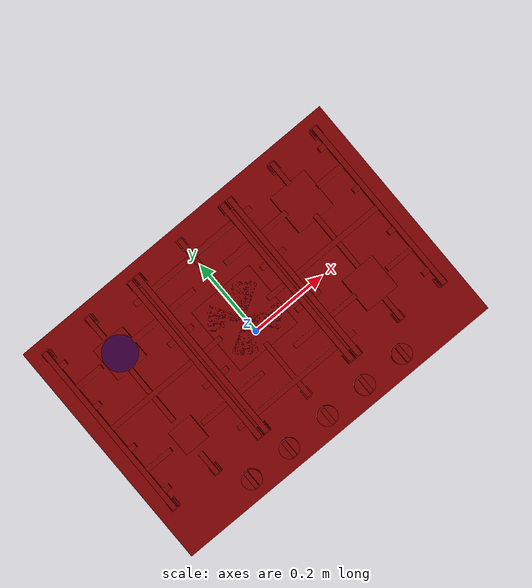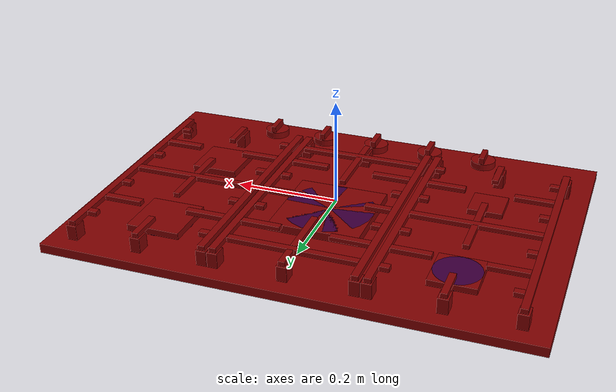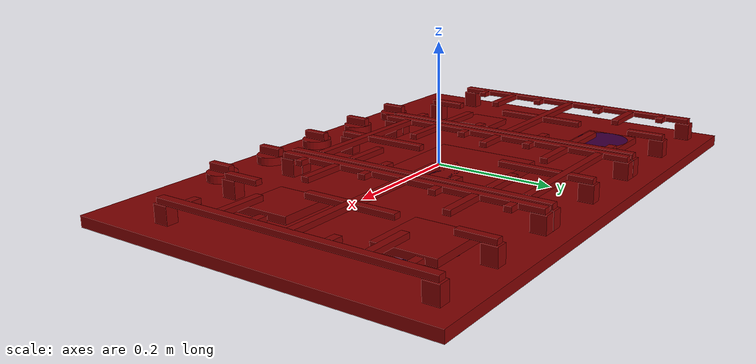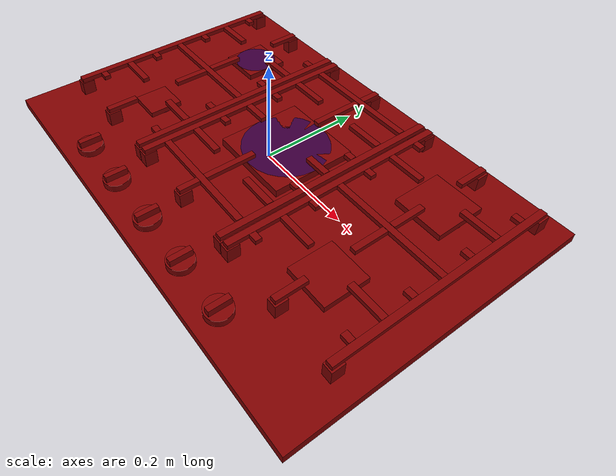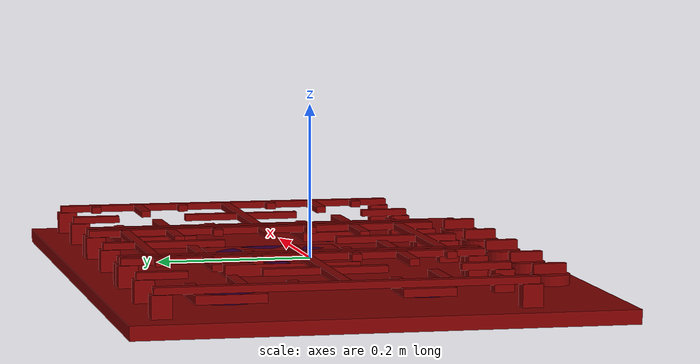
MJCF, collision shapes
<mujoco model="model">
  <compiler angle="radian"/>
  <asset>
    <mesh file="visuals/knob_center.obj" name="knob_center_vis"/>
    <mesh file="visuals/knob_front_left.obj" name="knob_front_left_vis"/>
    <mesh file="visuals/knob_front_right.obj" name="knob_front_right_vis"/>
    <mesh file="visuals/knob_rear_left.obj" name="knob_rear_left_vis"/>
    <mesh file="visuals/knob_rear_right.obj" name="knob_rear_right_vis"/>
    <mesh file="visuals/Body001.obj" name="Body001_vis"/>
    <texture file="visuals/T_BC001.png" name="Body001_material" type="2d"/>
    <material name="Body001_material" rgba="1 1 1 1.0" texture="Body001_material" shininess="0.47988295555114746" specular="1"/>
    <texture file="visuals/T_BC001.png" name="knob_front_left_material" type="2d"/>
    <material name="knob_front_left_material" rgba="1 1 1 1.0" texture="knob_front_left_material" shininess="0.47988295555114746" specular="1"/>
    <texture file="visuals/T_BC001.png" name="knob_front_right_material" type="2d"/>
    <material name="knob_front_right_material" rgba="1 1 1 1.0" texture="knob_front_right_material" shininess="0.47988295555114746" specular="1"/>
    <texture file="visuals/T_BC001.png" name="knob_rear_left_material" type="2d"/>
    <material name="knob_rear_left_material" rgba="1 1 1 1.0" texture="knob_rear_left_material" shininess="0.47988295555114746" specular="1"/>
    <texture file="visuals/T_BC001.png" name="knob_center_material" type="2d"/>
    <material name="knob_center_material" rgba="1 1 1 1.0" texture="knob_center_material" shininess="0.47988295555114746" specular="1"/>
    <texture file="visuals/T_BC001.png" name="knob_rear_right_material" type="2d"/>
    <material name="knob_rear_right_material" rgba="1 1 1 1.0" texture="knob_rear_right_material" shininess="0.47988295555114746" specular="1"/>
  </asset>
  <default>
    <default class="visual">
      <geom conaffinity="0" contype="0" group="1" type="mesh"/>
    </default>
    <default class="collision">
      <geom group="0" rgba="0.5 0 0 0.5"/>
    </default>
    <default class="spawn">
      <geom group="0" rgba="1 1 1 0.5" contype="0" conaffinity="0"/>
      <site group="0" rgba="1 1 1 0.5"/>
    </default>
    <default class="region">
      <geom group="1" conaffinity="0" contype="0" rgba="0 1 0 0"/>
    </default>
  </default>
  <worldbody>
    <body>
      <body name="object">
        <site type="cylinder" rgba="0 0 0.5 0.5" size="0.08656966686248779 0.012769924476742744" pos="0.0 0.040103647857904434 -0.007111881393939257" name="burner_on_center"/>
        <site type="cylinder" rgba="0 0 0.5 0.5" size="0.05144132301211357 0.011255131103098392" pos="0.2748992443084717 0.1626046597957611 -0.008661002852022648" name="burner_on_rear_right"/>
        <site type="cylinder" rgba="0 0 0.5 0.5" size="0.04561370983719826 0.00783844105899334" pos="0.27426406741142273 -0.0852443128824234 -0.005294788163155317" name="burner_on_front_right"/>
        <site type="cylinder" rgba="0 0 0.5 0.5" size="0.03314429894089699 0.00969509594142437" pos="-0.27445462346076965 -0.08466880768537521 -0.009657219983637333" name="burner_on_front_left"/>
        <site type="cylinder" rgba="0 0 0.5 0.5" size="0.04386577755212784 0.01081631425768137" pos="-0.2743167579174042 0.1626046597957611 -0.008231893181800842" name="burner_on_rear_left"/>
        <geom mesh="Body001_vis" type="mesh" solimp="0.998 0.998 0.001" solref="0.001 1" density="100" friction="0.95 0.3 0.1" class="visual" material="Body001_material"/>
        <geom class="collision" type="box" pos="0.0 0.040103647857904434 -0.0019952296279370785" size="0.08656966686248779 0.0879051461815834 0.007653272710740566" quat="1.0 0.0 0.0 0.0"/>
        <geom class="collision" type="box" pos="-0.27445462346076965 -0.08466880768537521 -0.003927970305085182" size="0.03314429894089699 0.03365560248494148 0.0051910425536334515" quat="1.0 0.0 0.0 0.0"/>
        <geom class="collision" type="box" pos="0.27426406741142273 -0.0852443128824234 -0.003200037404894829" size="0.04561370983719826 0.04631737619638443 0.006193192675709724" quat="1.0 0.0 0.0 0.0"/>
        <geom class="collision" type="box" pos="-0.2743167579174042 0.1626046597957611 -0.00313394982367754" size="0.04386577755212784 0.04454248026013374 0.005680954083800316" quat="1.0 0.0 0.0 0.0"/>
        <geom class="collision" type="box" pos="0.2748992443084717 0.1626046597957611 -0.0025666002184152603" size="0.05144132301211357 0.05223488807678223 0.006143162492662668" quat="1.0 0.0 0.0 0.0"/>
        <geom class="collision" type="box" pos="-0.0004749286163132638 -0.00021361373364925385 -0.01901177130639553" size="0.45149317383766174 0.3072732090950012 0.008988043293356895" quat="1.0 0.0 0.0 0.0"/>
        <geom class="collision" type="box" pos="-0.40318939089775085 0.0390193909406662 0.0227240901440382" size="0.006734521593898535 0.2327040582895279 0.004370349925011396" quat="1.0 0.0 0.0 0.0"/>
        <geom class="collision" type="box" pos="-0.40363121032714844 -0.1840205043554306 0.00425000349059701" size="0.009656357578933239 0.012680822052061558 0.014190979301929474" quat="1.0 0.0 0.0 0.0"/>
        <geom class="collision" type="box" pos="-0.40363121032714844 0.2629361152648926 0.00425000349059701" size="0.009656357578933239 0.012680822052061558 0.014190979301929474" quat="1.0 0.0 0.0 0.0"/>
        <geom class="collision" type="box" pos="-0.38725337386131287 -0.14592097699642181 0.0227240901440382" size="0.008896112442016602 0.006432379595935345 0.004370349925011396" quat="1.0 0.0 0.0 0.0"/>
        <geom class="collision" type="box" pos="-0.35932040214538574 -0.0839422345161438 0.0227240901440382" size="0.03682908043265343 0.006432379595935345 0.004370349925011396" quat="1.0 0.0 0.0 0.0"/>
        <geom class="collision" type="box" pos="-0.27563101053237915 0.0394468791782856 0.0227240901440382" size="0.12051846086978912 0.006432379595935345 0.004370349925011396" quat="1.0 0.0 0.0 0.0"/>
        <geom class="collision" type="box" pos="-0.38725337386131287 -0.023332936689257622 0.0227240901440382" size="0.008896112442016602 0.006432379595935345 0.004370349925011396" quat="1.0 0.0 0.0 0.0"/>
        <geom class="collision" type="box" pos="-0.38725337386131287 0.22476637363433838 0.0227240901440382" size="0.008896112442016602 0.006432379595935345 0.004370349925011396" quat="1.0 0.0 0.0 0.0"/>
        <geom class="collision" type="box" pos="-0.35932040214538574 0.1637813299894333 0.0227240901440382" size="0.03682908043265343 0.006432379595935345 0.004370349925011396" quat="1.0 0.0 0.0 0.0"/>
        <geom class="collision" type="box" pos="-0.38725337386131287 0.10217834264039993 0.0227240901440382" size="0.008896112442016602 0.006432379595935345 0.004370349925011396" quat="1.0 0.0 0.0 0.0"/>
        <geom class="collision" type="box" pos="-0.2760373055934906 0.2629361152648926 0.00425000349059701" size="0.009656357578933239 0.012680822052061558 0.014190979301929474" quat="1.0 0.0 0.0 0.0"/>
        <geom class="collision" type="box" pos="-0.2760373055934906 -0.1840205043554306 0.00425000349059701" size="0.009656357578933239 0.012680822052061558 0.014190979301929474" quat="1.0 0.0 0.0 0.0"/>
        <geom class="collision" type="box" pos="-0.2761278450489044 -0.16219130158424377 0.0227240901440382" size="0.006160271819680929 0.031436044722795486 0.004370349925011396" quat="1.0 0.0 0.0 0.0"/>
        <geom class="collision" type="box" pos="-0.2761278450489044 0.2406606674194336 0.0227240901440382" size="0.006160271819680929 0.031436044722795486 0.004370349925011396" quat="1.0 0.0 0.0 0.0"/>
        <geom class="collision" type="box" pos="-0.2761278450489044 0.08178220689296722 0.0227240901440382" size="0.006160271819680929 0.035429757088422775 0.004370349925011396" quat="1.0 0.0 0.0 0.0"/>
        <geom class="collision" type="box" pos="-0.2761278450489044 -0.002649029716849327 0.0227240901440382" size="0.006160271819680929 0.035429757088422775 0.004370349925011396" quat="1.0 0.0 0.0 0.0"/>
        <geom class="collision" type="box" pos="-0.16512537002563477 0.10217834264039993 0.0227240901440382" size="0.008896112442016602 0.006432379595935345 0.004370349925011396" quat="1.0 0.0 0.0 0.0"/>
        <geom class="collision" type="box" pos="-0.1930583417415619 0.1637813299894333 0.0227240901440382" size="0.03682908043265343 0.006432379595935345 0.004370349925011396" quat="1.0 0.0 0.0 0.0"/>
        <geom class="collision" type="box" pos="-0.16512537002563477 0.22476637363433838 0.0227240901440382" size="0.008896112442016602 0.006432379595935345 0.004370349925011396" quat="1.0 0.0 0.0 0.0"/>
        <geom class="collision" type="box" pos="-0.16512537002563477 -0.02333293855190277 0.0227240901440382" size="0.008896112442016602 0.006432379595935345 0.004370349925011396" quat="1.0 0.0 0.0 0.0"/>
        <geom class="collision" type="box" pos="-0.1930583417415619 -0.0839422345161438 0.0227240901440382" size="0.03682908043265343 0.006432379595935345 0.004370349925011396" quat="1.0 0.0 0.0 0.0"/>
        <geom class="collision" type="box" pos="-0.16512537002563477 -0.145920991897583 0.0227240901440382" size="0.008896112442016602 0.006432379595935345 0.004370349925011396" quat="1.0 0.0 0.0 0.0"/>
        <geom class="collision" type="box" pos="-0.1487475335597992 0.2629361152648926 0.004250003024935722" size="0.009656357578933239 0.012680822052061558 0.014190979301929474" quat="1.0 0.0 0.0 0.0"/>
        <geom class="collision" type="box" pos="-0.1487475335597992 -0.1840205192565918 0.004250003024935722" size="0.009656357578933239 0.012680822052061558 0.014190979301929474" quat="1.0 0.0 0.0 0.0"/>
        <geom class="collision" type="box" pos="-0.14918936789035797 0.0390193909406662 0.0227240901440382" size="0.006734521593898535 0.2327040582895279 0.004370349925011396" quat="1.0 0.0 0.0 0.0"/>
        <geom class="collision" type="box" pos="0.40203577280044556 0.0390193909406662 0.0227240901440382" size="0.006734521593898535 0.2327040582895279 0.004370349925011396" quat="1.0 0.0 0.0 0.0"/>
        <geom class="collision" type="box" pos="0.40247756242752075 -0.1840205192565918 0.004250003024935722" size="0.009656357578933239 0.012680822052061558 0.014190979301929474" quat="1.0 0.0 0.0 0.0"/>
        <geom class="collision" type="box" pos="0.40247756242752075 0.2629361152648926 0.004250003024935722" size="0.009656357578933239 0.012680822052061558 0.014190979301929474" quat="1.0 0.0 0.0 0.0"/>
        <geom class="collision" type="box" pos="0.38609975576400757 -0.145920991897583 0.0227240901440382" size="0.008896112442016602 0.006432379595935345 0.004370349925011396" quat="1.0 0.0 0.0 0.0"/>
        <geom class="collision" type="box" pos="0.35816675424575806 -0.0839422345161438 0.0227240901440382" size="0.03682908043265343 0.006432379595935345 0.004370349925011396" quat="1.0 0.0 0.0 0.0"/>
        <geom class="collision" type="box" pos="0.38609975576400757 -0.02333293855190277 0.0227240901440382" size="0.008896112442016602 0.006432379595935345 0.004370349925011396" quat="1.0 0.0 0.0 0.0"/>
        <geom class="collision" type="box" pos="0.38609975576400757 0.22476637363433838 0.0227240901440382" size="0.008896112442016602 0.006432379595935345 0.004370349925011396" quat="1.0 0.0 0.0 0.0"/>
        <geom class="collision" type="box" pos="0.35816675424575806 0.1637813299894333 0.0227240901440382" size="0.03682908043265343 0.006432379595935345 0.004370349925011396" quat="1.0 0.0 0.0 0.0"/>
        <geom class="collision" type="box" pos="0.38609975576400757 0.10217834264039993 0.0227240901440382" size="0.008896112442016602 0.006432379595935345 0.004370349925011396" quat="1.0 0.0 0.0 0.0"/>
        <geom class="collision" type="box" pos="0.2750972509384155 -0.002649029716849327 0.0227240901440382" size="0.006160271819680929 0.035429757088422775 0.004370349925011396" quat="1.0 0.0 0.0 0.0"/>
        <geom class="collision" type="box" pos="0.2750972509384155 0.08178220689296722 0.0227240901440382" size="0.006160271819680929 0.035429757088422775 0.004370349925011396" quat="1.0 0.0 0.0 0.0"/>
        <geom class="collision" type="box" pos="0.2750972509384155 0.2406606674194336 0.0227240901440382" size="0.006160271819680929 0.031436044722795486 0.004370349925011396" quat="1.0 0.0 0.0 0.0"/>
        <geom class="collision" type="box" pos="0.2750972509384155 -0.16219130158424377 0.0227240901440382" size="0.006160271819680929 0.031436044722795486 0.004370349925011396" quat="1.0 0.0 0.0 0.0"/>
        <geom class="collision" type="box" pos="0.27518779039382935 -0.1840205043554306 0.00425000349059701" size="0.009656357578933239 0.012680822052061558 0.014190979301929474" quat="1.0 0.0 0.0 0.0"/>
        <geom class="collision" type="box" pos="0.27518779039382935 0.2629361152648926 0.00425000349059701" size="0.009656357578933239 0.012680822052061558 0.014190979301929474" quat="1.0 0.0 0.0 0.0"/>
        <geom class="collision" type="box" pos="0.16397173702716827 0.10217834264039993 0.0227240901440382" size="0.008896112442016602 0.006432379595935345 0.004370349925011396" quat="1.0 0.0 0.0 0.0"/>
        <geom class="collision" type="box" pos="0.1919047087430954 0.1637813299894333 0.0227240901440382" size="0.03682908043265343 0.006432379595935345 0.004370349925011396" quat="1.0 0.0 0.0 0.0"/>
        <geom class="collision" type="box" pos="0.16397173702716827 0.22476637363433838 0.0227240901440382" size="0.008896112442016602 0.006432379595935345 0.004370349925011396" quat="1.0 0.0 0.0 0.0"/>
        <geom class="collision" type="box" pos="0.16397173702716827 -0.023332936689257622 0.0227240901440382" size="0.008896112442016602 0.006432379595935345 0.004370349925011396" quat="1.0 0.0 0.0 0.0"/>
        <geom class="collision" type="box" pos="0.2755940854549408 0.0394468791782856 0.0227240901440382" size="0.12051846086978912 0.006432379595935345 0.004370349925011396" quat="1.0 0.0 0.0 0.0"/>
        <geom class="collision" type="box" pos="0.1919047087430954 -0.0839422345161438 0.0227240901440382" size="0.03682908043265343 0.006432379595935345 0.004370349925011396" quat="1.0 0.0 0.0 0.0"/>
        <geom class="collision" type="box" pos="0.16397173702716827 -0.14592097699642181 0.0227240901440382" size="0.008896112442016602 0.006432379595935345 0.004370349925011396" quat="1.0 0.0 0.0 0.0"/>
        <geom class="collision" type="box" pos="0.1475939005613327 0.2629361152648926 0.00425000349059701" size="0.009656357578933239 0.012680822052061558 0.014190979301929474" quat="1.0 0.0 0.0 0.0"/>
        <geom class="collision" type="box" pos="0.1475939005613327 -0.1840205043554306 0.00425000349059701" size="0.009656357578933239 0.012680822052061558 0.014190979301929474" quat="1.0 0.0 0.0 0.0"/>
        <geom class="collision" type="box" pos="0.14803574979305267 0.0390193909406662 0.0227240901440382" size="0.006734521593898535 0.2327040582895279 0.004370349925011396" quat="1.0 0.0 0.0 0.0"/>
        <geom class="collision" type="box" pos="-0.1277206689119339 0.0390193909406662 0.0227240901440382" size="0.006734521593898535 0.2327040582895279 0.004370349925011396" quat="1.0 0.0 0.0 0.0"/>
        <geom class="collision" type="box" pos="-0.12816253304481506 -0.1840205043554306 0.00425000349059701" size="0.009656357578933239 0.012680822052061558 0.014190979301929474" quat="1.0 0.0 0.0 0.0"/>
        <geom class="collision" type="box" pos="-0.12816253304481506 0.2629361152648926 0.00425000349059701" size="0.009656357578933239 0.012680822052061558 0.014190979301929474" quat="1.0 0.0 0.0 0.0"/>
        <geom class="collision" type="box" pos="-0.0008727461099624634 -0.14592097699642181 0.0227240901440382" size="0.11980806291103363 0.006432379595935345 0.004370349925011396" quat="1.0 0.0 0.0 0.0"/>
        <geom class="collision" type="box" pos="-0.08385172486305237 -0.0839422345161438 0.0227240901440382" size="0.03682908043265343 0.006432379595935345 0.004370349925011396" quat="1.0 0.0 0.0 0.0"/>
        <geom class="collision" type="box" pos="-0.09552067518234253 0.0394468791782856 0.0227240901440382" size="0.025160131976008415 0.006432379595935345 0.004370349925011396" quat="1.0 0.0 0.0 0.0"/>
        <geom class="collision" type="box" pos="-0.11157006770372391 -0.023332936689257622 0.0227240901440382" size="0.008896112442016602 0.006432379595935345 0.004370349925011396" quat="1.0 0.0 0.0 0.0"/>
        <geom class="collision" type="box" pos="-0.0008532702922821045 0.22476637363433838 0.0227240901440382" size="0.11982753872871399 0.006432379595935345 0.004370349925011396" quat="1.0 0.0 0.0 0.0"/>
        <geom class="collision" type="box" pos="-0.08385172486305237 0.1637813299894333 0.0227240901440382" size="0.03682908043265343 0.006432379595935345 0.004370349925011396" quat="1.0 0.0 0.0 0.0"/>
        <geom class="collision" type="box" pos="-0.11157006770372391 0.10217834264039993 0.0227240901440382" size="0.008896112442016602 0.006432379595935345 0.004370349925011396" quat="1.0 0.0 0.0 0.0"/>
        <geom class="collision" type="box" pos="-0.0005686432123184204 0.2629361152648926 0.00425000349059701" size="0.009656357578933239 0.012680822052061558 0.014190979301929474" quat="1.0 0.0 0.0 0.0"/>
        <geom class="collision" type="box" pos="-0.0005686432123184204 -0.1840205043554306 0.00425000349059701" size="0.009656357578933239 0.012680822052061558 0.014190979301929474" quat="1.0 0.0 0.0 0.0"/>
        <geom class="collision" type="box" pos="-0.0002597465645521879 -0.17300379276275635 0.0227240901440382" size="0.006160271819680929 0.02062354050576687 0.004370349925011396" quat="1.0 0.0 0.0 0.0"/>
        <geom class="collision" type="box" pos="0.0001706262119114399 0.25169962644577026 0.0227240901440382" size="0.006160271819680929 0.020397083833813667 0.004370349925011396" quat="1.0 0.0 0.0 0.0"/>
        <geom class="collision" type="box" pos="-0.0002421701792627573 0.1655263602733612 0.0227240901440382" size="0.006160271819680929 0.05238959193229675 0.004370349925011396" quat="1.0 0.0 0.0 0.0"/>
        <geom class="collision" type="box" pos="-0.0002421701792627573 -0.08660829067230225 0.0227240901440382" size="0.006160271819680929 0.05240817368030548 0.004370349925011396" quat="1.0 0.0 0.0 0.0"/>
        <geom class="collision" type="box" pos="0.1103433221578598 0.10217834264039993 0.0227240901440382" size="0.008896112442016602 0.006432379595935345 0.004370349925011396" quat="1.0 0.0 0.0 0.0"/>
        <geom class="collision" type="box" pos="0.08241032063961029 0.1637813299894333 0.0227240901440382" size="0.03682908043265343 0.006432379595935345 0.004370349925011396" quat="1.0 0.0 0.0 0.0"/>
        <geom class="collision" type="box" pos="0.1103433221578598 -0.02333293855190277 0.0227240901440382" size="0.008896112442016602 0.006432379595935345 0.004370349925011396" quat="1.0 0.0 0.0 0.0"/>
        <geom class="collision" type="box" pos="0.08241032063961029 -0.0839422345161438 0.0227240901440382" size="0.03682908043265343 0.006432379595935345 0.004370349925011396" quat="1.0 0.0 0.0 0.0"/>
        <geom class="collision" type="box" pos="0.12672112882137299 0.2629361152648926 0.004250003024935722" size="0.009656357578933239 0.012680822052061558 0.014190979301929474" quat="1.0 0.0 0.0 0.0"/>
        <geom class="collision" type="box" pos="0.12672112882137299 -0.1840205192565918 0.004250003024935722" size="0.009656357578933239 0.012680822052061558 0.014190979301929474" quat="1.0 0.0 0.0 0.0"/>
        <geom class="collision" type="box" pos="0.12687279284000397 0.0390193909406662 0.0227240901440382" size="0.006734521593898535 0.2327040582895279 0.004370349925011396" quat="1.0 0.0 0.0 0.0"/>
        <geom class="collision" type="box" pos="0.0940760001540184 0.0394468791782856 0.0227240901440382" size="0.025160131976008415 0.006432379595935345 0.004370349925011396" quat="1.0 0.0 0.0 0.0"/>
        <body name="knob_front_left">
          <joint axis="0.0 0.0 1.0" pos="-0.22797222435474396 -0.2577540874481201 -0.004396629519760609" limited="true" name="knob_front_left_joint" range="0.0 3.141592653589793" type="hinge" damping="0.05" armature="0.001"/>
          <geom mesh="knob_front_left_vis" type="mesh" solimp="0.998 0.998 0.001" solref="0.001 1" density="100" friction="0.95 0.3 0.1" class="visual" material="knob_front_left_material"/>
          <geom class="collision" type="box" pos="-0.227618008852005 -0.2570178210735321 0.010066539980471134" size="0.005533439107239246 0.021329762414097786 0.006609992124140263" quat="1.0 0.0 0.0 0.0"/>
          <geom class="collision" type="cylinder" pos="-0.22776204347610474 -0.25818949937820435 -0.003017301904037595" size="0.02484731934964657 0.006743378005921841" quat="1.0 0.0 0.0 0.0"/>
        </body>
        <body name="knob_front_right">
          <joint axis="0.0 0.0 1.0" pos="0.2271823137998581 -0.2577540874481201 -0.004396629519760609" limited="true" name="knob_front_right_joint" range="0.0 3.141592653589793" type="hinge" damping="0.05" armature="0.001"/>
          <geom mesh="knob_front_right_vis" type="mesh" solimp="0.998 0.998 0.001" solref="0.001 1" density="100" friction="0.95 0.3 0.1" class="visual" material="knob_front_right_material"/>
          <geom class="collision" type="box" pos="0.22724005579948425 -0.2578127086162567 0.009792334400117397" size="0.005533439107239246 0.021329713985323906 0.006906237918883562" quat="1.0 0.0 0.0 0.0"/>
          <geom class="collision" type="cylinder" pos="0.22654938697814941 -0.25818949937820435 -0.003017301904037595" size="0.02484731934964657 0.006743378005921841" quat="1.0 0.0 0.0 0.0"/>
        </body>
        <body name="knob_rear_left">
          <joint axis="0.0 0.0 1.0" pos="-0.11490385234355927 -0.2577540874481201 -0.004396629519760609" limited="true" name="knob_rear_left_joint" range="0.0 3.141592653589793" type="hinge" damping="0.05" armature="0.001"/>
          <geom mesh="knob_rear_left_vis" type="mesh" solimp="0.998 0.998 0.001" solref="0.001 1" density="100" friction="0.95 0.3 0.1" class="visual" material="knob_rear_left_material"/>
          <geom class="collision" type="box" pos="-0.11463724821805954 -0.2581624388694763 0.010232592932879925" size="0.005533439107239246 0.02132975123822689 0.006409805733710527" quat="1.0 0.0 0.0 0.0"/>
          <geom class="collision" type="cylinder" pos="-0.11471475660800934 -0.25818949937820435 -0.003017301904037595" size="0.02484731934964657 0.006743378005921841" quat="1.0 0.0 0.0 0.0"/>
        </body>
        <body name="knob_center">
          <joint axis="0.0 0.0 1.0" pos="0.0020599928684532642 -0.2577540874481201 -0.004396629519760609" limited="true" name="knob_center_joint" range="0.0 3.141592653589793" type="hinge" damping="0.05" armature="0.001"/>
          <geom mesh="knob_center_vis" type="mesh" solimp="0.998 0.998 0.001" solref="0.001 1" density="100" friction="0.95 0.3 0.1" class="visual" material="knob_center_material"/>
          <geom class="collision" type="box" pos="0.002338463207706809 -0.25715136528015137 0.010167796164751053" size="0.005533439107239246 0.02132972702383995 0.006528975907713175" quat="1.0 0.0 0.0 0.0"/>
          <geom class="collision" type="cylinder" pos="0.0016159671358764172 -0.25798413157463074 -0.003017301904037595" size="0.02484731934964657 0.006743378005921841" quat="1.0 0.0 0.0 0.0"/>
        </body>
        <body name="knob_rear_right">
          <joint axis="0.0 0.0 1.0" pos="0.11504027992486954 -0.2577540874481201 -0.004396629519760609" limited="true" name="knob_rear_right_joint" range="0.0 3.141592653589793" type="hinge" damping="0.05" armature="0.001"/>
          <geom mesh="knob_rear_right_vis" type="mesh" solimp="0.998 0.998 0.001" solref="0.001 1" density="100" friction="0.95 0.3 0.1" class="visual" material="knob_rear_right_material"/>
          <geom class="collision" type="box" pos="0.11523716151714325 -0.2581624388694763 0.00996001809835434" size="0.005533439107239246 0.021329738199710846 0.006615628954023123" quat="1.0 0.0 0.0 0.0"/>
          <geom class="collision" type="cylinder" pos="0.11455321311950684 -0.25818949937820435 -0.003017301904037595" size="0.02484731934964657 0.006743378005921841" quat="1.0 0.0 0.0 0.0"/>
        </body>
        <geom class="region" name="reg_main" type="box" pos="-7.450580596923828e-09 0.0 -0.018957583233714104" size="0.45074325799942017 0.30664271116256714 0.007957583293318748"/>
      </body>
    </body>
  </worldbody>
  <actuator>
    <motor name="knob_front_left_joint_actuator" joint="knob_front_left_joint" gear="10"/>
    <motor name="knob_front_right_joint_actuator" joint="knob_front_right_joint" gear="10"/>
    <motor name="knob_rear_left_joint_actuator" joint="knob_rear_left_joint" gear="10"/>
    <motor name="knob_center_joint_actuator" joint="knob_center_joint" gear="10"/>
    <motor name="knob_rear_right_joint_actuator" joint="knob_rear_right_joint" gear="10"/>
  </actuator>
</mujoco>
